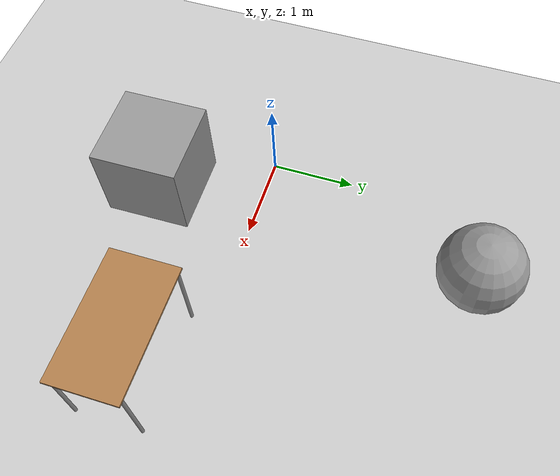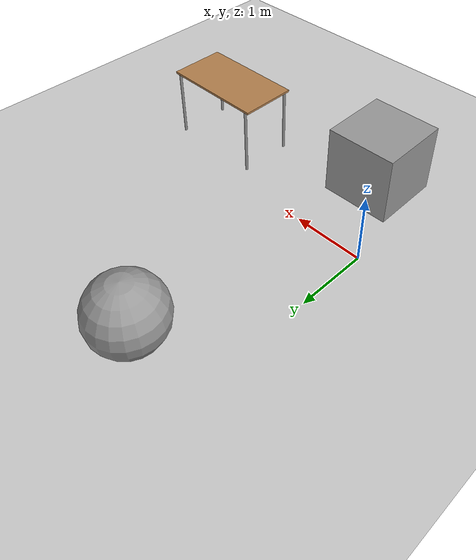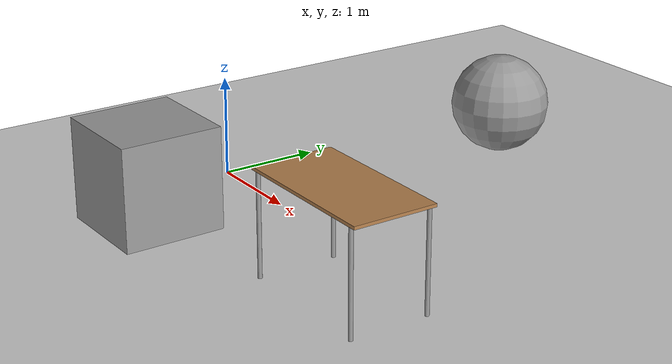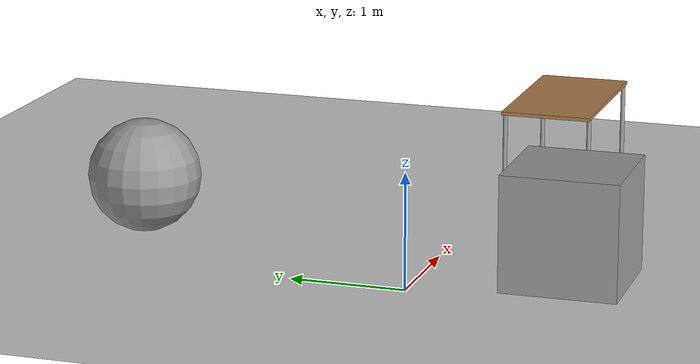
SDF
<sdf version="1.6">
 <world name="default">
  <light name="sun" type="directional">
   <pose>0 0 10 0 -0 0</pose>
   <diffuse>0.8 0.8 0.8 1</diffuse>
   <specular>0.1 0.1 0.1 1</specular>
   <attenuation>
    <range>1000</range>
    <constant>0.9</constant>
    <linear>0.01</linear>
    <quadratic>0.001</quadratic>
   </attenuation>
   <direction>-0.5 0.5 -1</direction>
  </light>
  <model name="ground_plane">
   <static>1</static>
   <link name="link">
    <collision name="collision">
     <geometry><plane><normal>0 0 1</normal><size>100 100</size></plane></geometry>
     <surface><friction><ode><mu>100</mu><mu2>50</mu2></ode></friction></surface>
    </collision>
    <visual name="visual">
     <cast_shadows>0</cast_shadows>
     <geometry><plane><normal>0 0 1</normal><size>100 100</size></plane></geometry>
     <material>
      <script><uri>file://media/materials/scripts/gazebo.material</uri><name>Gazebo/Grey</name></script>
     </material>
    </visual>
   </link>
  </model>
  <gravity>0 0 -9.8</gravity>
  <magnetic_field>6e-06 2.3e-05 -4.2e-05</magnetic_field>
  <atmosphere type="adiabatic"/>
  <physics name="default_physics" default="0" type="ode">
   <max_step_size>0.001</max_step_size>
   <real_time_factor>1</real_time_factor>
   <real_time_update_rate>1000</real_time_update_rate>
  </physics>
  <scene><ambient>0.4 0.4 0.4 1</ambient><background>0.7 0.7 0.7 1</background><shadows>1</shadows></scene>
  <spherical_coordinates>
   <surface_model>EARTH_WGS84</surface_model>
   <latitude_deg>0</latitude_deg>
   <longitude_deg>0</longitude_deg>
   <elevation>0</elevation>
   <heading_deg>0</heading_deg>
  </spherical_coordinates>
  <model name="unit_box">
   <pose>0.672038 -1.23176 0.499995 -1e-05 -0 0.012772</pose>
   <link name="link">
    <inertial>
     <mass>1</mass>
     <inertia>
      <ixx>0.166667</ixx>
      <ixy>0</ixy>
      <ixz>0</ixz>
      <iyy>0.166667</iyy>
      <iyz>0</iyz>
      <izz>0.166667</izz>
     </inertia>
    </inertial>
    <collision name="collision"><geometry><box><size>1 1 1</size></box></geometry></collision>
    <visual name="visual">
     <geometry><box><size>1 1 1</size></box></geometry>
     <material>
      <script><name>Gazebo/Grey</name><uri>file://media/materials/scripts/gazebo.material</uri></script>
     </material>
    </visual>
   </link>
  </model>
  <model name="unit_sphere">
   <pose>0.985257 2.7098 0.5 0 -0 0</pose>
   <link name="link">
    <inertial>
     <mass>1</mass>
     <inertia><ixx>0.1</ixx><ixy>0</ixy><ixz>0</ixz><iyy>0.1</iyy><iyz>0</iyz><izz>0.1</izz></inertia>
    </inertial>
    <collision name="collision"><geometry><sphere><radius>0.5</radius></sphere></geometry></collision>
    <visual name="visual">
     <geometry><sphere><radius>0.5</radius></sphere></geometry>
     <material>
      <script><name>Gazebo/Grey</name><uri>file://media/materials/scripts/gazebo.material</uri></script>
     </material>
    </visual>
   </link>
  </model>
  <model name="table">
   <static>1</static>
   <link name="link">
    <collision name="surface">
     <pose>0 0 1 0 -0 0</pose>
     <geometry><box><size>1.5 0.8 0.03</size></box></geometry>
     <surface><friction><ode><mu>0.6</mu><mu2>0.6</mu2></ode></friction></surface>
    </collision>
    <visual name="visual1">
     <pose>0 0 1 0 -0 0</pose>
     <geometry><box><size>1.5 0.8 0.03</size></box></geometry>
     <material>
      <script><uri>file://media/materials/scripts/gazebo.material</uri><name>Gazebo/Wood</name></script>
     </material>
    </visual>
    <collision name="front_left_leg">
     <pose>0.68 0.38 0.5 0 -0 0</pose>
     <geometry><cylinder><radius>0.02</radius><length>1</length></cylinder></geometry>
    </collision>
    <visual name="front_left_leg">
     <pose>0.68 0.38 0.5 0 -0 0</pose>
     <geometry><cylinder><radius>0.02</radius><length>1</length></cylinder></geometry>
     <material>
      <script><uri>file://media/materials/scripts/gazebo.material</uri><name>Gazebo/Grey</name></script>
     </material>
    </visual>
    <collision name="front_right_leg">
     <pose>0.68 -0.38 0.5 0 -0 0</pose>
     <geometry><cylinder><radius>0.02</radius><length>1</length></cylinder></geometry>
    </collision>
    <visual name="front_right_leg">
     <pose>0.68 -0.38 0.5 0 -0 0</pose>
     <geometry><cylinder><radius>0.02</radius><length>1</length></cylinder></geometry>
     <material>
      <script><uri>file://media/materials/scripts/gazebo.material</uri><name>Gazebo/Grey</name></script>
     </material>
    </visual>
    <collision name="back_right_leg">
     <pose>-0.68 -0.38 0.5 0 -0 0</pose>
     <geometry><cylinder><radius>0.02</radius><length>1</length></cylinder></geometry>
    </collision>
    <visual name="back_right_leg">
     <pose>-0.68 -0.38 0.5 0 -0 0</pose>
     <geometry><cylinder><radius>0.02</radius><length>1</length></cylinder></geometry>
     <material>
      <script><uri>file://media/materials/scripts/gazebo.material</uri><name>Gazebo/Grey</name></script>
     </material>
    </visual>
    <collision name="back_left_leg">
     <pose>-0.68 0.38 0.5 0 -0 0</pose>
     <geometry><cylinder><radius>0.02</radius><length>1</length></cylinder></geometry>
    </collision>
    <visual name="back_left_leg">
     <pose>-0.68 0.38 0.5 0 -0 0</pose>
     <geometry><cylinder><radius>0.02</radius><length>1</length></cylinder></geometry>
     <material>
      <script><uri>file://media/materials/scripts/gazebo.material</uri><name>Gazebo/Grey</name></script>
     </material>
    </visual>
   </link>
   <pose>2.92037 -0.614537 0 0 -0 0</pose>
  </model>
 </world>
</sdf>
